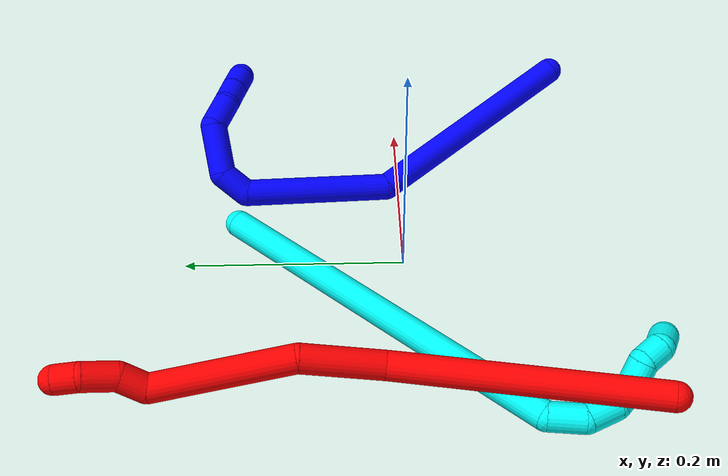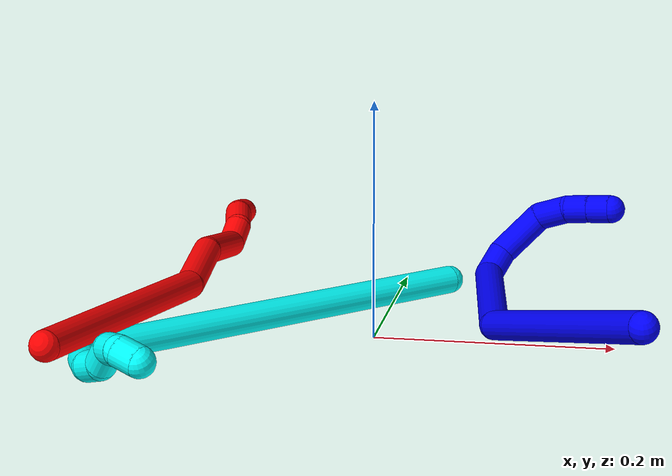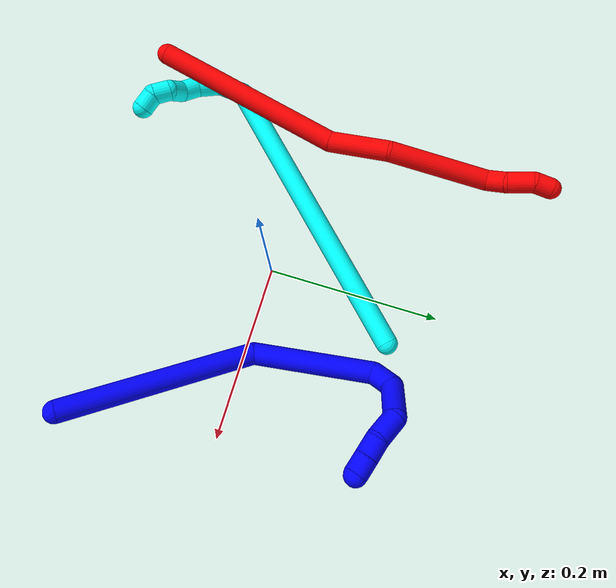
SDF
<sdf version="1.7">
 <world name="default">
  <plugin name="TubeGeneratorPlugin" filename="libtube_generator_plugin.so"/>
  <model name="photoneo_s_sensor">
   <static>1</static>
   <pose>0 0 2 1.57079 1.57079 3.14159</pose>
   <link name="link">
    <inertial><mass>0.1</mass></inertial>
    <sensor name="sensor" type="depth">
     <update_rate>30</update_rate>
     <camera>
      <horizontal_fov>1.22</horizontal_fov>
      <image><width>1920</width><height>1200</height><format>B8G8R8</format></image>
      <clip><near>0.1</near><far>4</far></clip>
      <depth_camera><output>points</output></depth_camera>
     </camera>
     <plugin name="camera_plugin" filename="libgazebo_ros_depth_camera.so">
      <baseline>0.2</baseline>
      <alwaysOn>1</alwaysOn>
      <updateRate>0.0</updateRate>
      <cameraName>camera_ir</cameraName>
      <imageTopicName>/camera/color/image_raw</imageTopicName>
      <cameraInfoTopicName>/camera/color/camera_info</cameraInfoTopicName>
      <depthImageTopicName>/camera/depth/image_raw</depthImageTopicName>
      <depthImageCameraInfoTopicName>/camera/depth/camera_info</depthImageCameraInfoTopicName>
      <pointCloudTopicName>/camera/depth/points</pointCloudTopicName>
      <frameName>fr_optical</frameName>
      <pointCloudCutoff>0.1</pointCloudCutoff>
      <pointCloudCutoffMax>2.0</pointCloudCutoffMax>
      <distortionK1>0</distortionK1>
      <distortionK2>0</distortionK2>
      <distortionK3>0</distortionK3>
      <distortionT1>0</distortionT1>
      <distortionT2>0</distortionT2>
      <CxPrime>0</CxPrime>
      <Cx>0</Cx>
      <Cy>0</Cy>
      <focalLength>0</focalLength>
      <hackBaseline>0</hackBaseline>
     </plugin>
    </sensor>
   </link>
  </model>
  <gravity>0 0 -9.8</gravity>
  <magnetic_field>6e-06 2.3e-05 -4.2e-05</magnetic_field>
  <atmosphere type="adiabatic"/>
  <physics name="default_physics" default="0" type="ode">
   <max_step_size>0.003</max_step_size>
   <real_time_factor>1</real_time_factor>
   <real_time_update_rate>1000</real_time_update_rate>
   <max_contacts>10000</max_contacts>
   <ode>
    <solver>
     <type>quick</type>
     <iters>100</iters>
     <sor>1.3</sor>
     <use_dynamic_moi_rescaling>0</use_dynamic_moi_rescaling>
    </solver>
    <constraints>
     <contact_max_correcting_vel>0</contact_max_correcting_vel>
     <contact_surface_layer>0.001</contact_surface_layer>
     <cfm>0</cfm>
     <erp>0.2</erp>
    </constraints>
   </ode>
  </physics>
  <scene><ambient>0.4 0.4 0.4 1</ambient><background>0.7 0.7 0.7 1</background><shadows>0</shadows></scene>
  <audio><device>default</device></audio>
  <spherical_coordinates>
   <surface_model>EARTH_WGS84</surface_model>
   <latitude_deg>0</latitude_deg>
   <longitude_deg>0</longitude_deg>
   <elevation>0</elevation>
   <heading_deg>0</heading_deg>
  </spherical_coordinates>
  <model name="bin">
   <static>1</static>
   <link name="bottom">
    <collision name="collision-bottom">
     <pose>0 0 -0.01 0 -0 0</pose>
     <geometry><box><size>0.8 0.6 0.02</size></box></geometry>
     <surface>
      <friction><ode><mu>100</mu><mu2>100</mu2></ode></friction>
      <contact><collide_bitmask>65535</collide_bitmask></contact>
     </surface>
    </collision>
   </link>
   <link name="west_wall">
    <collision name="collision-west_wall">
     <pose>-0.41 0 0.1 0 -0 0</pose>
     <geometry><box><size>0.02 0.6 0.2</size></box></geometry>
     <surface>
      <friction><ode><mu>100</mu><mu2>100</mu2></ode></friction>
      <contact><collide_bitmask>65535</collide_bitmask></contact>
     </surface>
    </collision>
   </link>
   <link name="east_wall">
    <collision name="collision-east_wall">
     <pose>0.41 0 0.1 0 -0 0</pose>
     <geometry><box><size>0.02 0.6 0.2</size></box></geometry>
     <surface>
      <friction><ode><mu>100</mu><mu2>100</mu2></ode></friction>
      <contact><collide_bitmask>65535</collide_bitmask></contact>
     </surface>
    </collision>
   </link>
   <link name="south_wall">
    <collision name="collision-south_wall">
     <pose>0 -0.31 0.1 0 -0 0</pose>
     <geometry><box><size>0.8 0.02 0.2</size></box></geometry>
     <surface>
      <friction><ode><mu>100</mu><mu2>100</mu2></ode></friction>
      <contact><collide_bitmask>65535</collide_bitmask></contact>
     </surface>
    </collision>
   </link>
   <link name="north_wall">
    <collision name="collision-north_wall">
     <pose>0 0.31 0.1 0 -0 0</pose>
     <geometry><box><size>0.8 0.02 0.2</size></box></geometry>
     <surface>
      <friction><ode><mu>100</mu><mu2>100</mu2></ode></friction>
      <contact><collide_bitmask>65535</collide_bitmask></contact>
     </surface>
    </collision>
   </link>
  </model>
  <model name="1">
   <static>0</static>
   <link name="1">
    <collision name="collision-cylinder-e_1_1_4">
     <pose>-0.056425 0.068538 -0.061314 -2.30062 -0.550344 1.12638</pose>
     <geometry><cylinder><radius>0.0125</radius><length>0.215784</length></cylinder></geometry>
     <surface>
      <friction><ode><mu>1.16</mu><mu2>1.16</mu2><slip1>0</slip1><slip2>0</slip2></ode></friction>
      <contact><ode><kp>1e+06</kp><kd>1</kd><max_vel>0</max_vel><min_depth>0.001</min_depth></ode></contact>
     </surface>
    </collision>
    <visual name="visual-cylinder-e_1_1_4">
     <pose>-0.056425 0.068538 -0.061314 -2.30062 -0.550344 1.12638</pose>
     <geometry><cylinder><radius>0.0125</radius><length>0.215784</length></cylinder></geometry>
     <material><ambient>0 0 1 1</ambient></material>
    </visual>
    <collision name="collision-cylinder-e_2_4_5">
     <pose>-0.115867 0.198872 -0.151185 -2.00367 -0.044277 0.069221</pose>
     <geometry><cylinder><radius>0.0125</radius><length>0.136285</length></cylinder></geometry>
     <surface>
      <friction><ode><mu>1.16</mu><mu2>1.16</mu2><slip1>0</slip1><slip2>0</slip2></ode></friction>
      <contact><ode><kp>1e+06</kp><kd>1</kd><max_vel>0</max_vel><min_depth>0.001</min_depth></ode></contact>
     </surface>
    </collision>
    <visual name="visual-cylinder-e_2_4_5">
     <pose>-0.115867 0.198872 -0.151185 -2.00367 -0.044277 0.069221</pose>
     <geometry><cylinder><radius>0.0125</radius><length>0.136285</length></cylinder></geometry>
     <material><ambient>0 0 1 1</ambient></material>
    </visual>
    <collision name="collision-cylinder-e_3_5_6">
     <pose>-0.112462 0.273424 -0.178619 -1.48296 0.464807 -0.426904</pose>
     <geometry><cylinder><radius>0.0125</radius><length>0.028648</length></cylinder></geometry>
     <surface>
      <friction><ode><mu>1.16</mu><mu2>1.16</mu2><slip1>0</slip1><slip2>0</slip2></ode></friction>
      <contact><ode><kp>1e+06</kp><kd>1</kd><max_vel>0</max_vel><min_depth>0.001</min_depth></ode></contact>
     </surface>
    </collision>
    <visual name="visual-cylinder-e_3_5_6">
     <pose>-0.112462 0.273424 -0.178619 -1.48296 0.464807 -0.426904</pose>
     <geometry><cylinder><radius>0.0125</radius><length>0.028648</length></cylinder></geometry>
     <material><ambient>0 0 1 1</ambient></material>
    </visual>
    <collision name="collision-cylinder-e_4_6_7">
     <pose>-0.087435 0.295899 -0.165801 -0.693485 0.885611 -0.339409</pose>
     <geometry><cylinder><radius>0.0125</radius><length>0.04806</length></cylinder></geometry>
     <surface>
      <friction><ode><mu>1.16</mu><mu2>1.16</mu2><slip1>0</slip1><slip2>0</slip2></ode></friction>
      <contact><ode><kp>1e+06</kp><kd>1</kd><max_vel>0</max_vel><min_depth>0.001</min_depth></ode></contact>
     </surface>
    </collision>
    <visual name="visual-cylinder-e_4_6_7">
     <pose>-0.087435 0.295899 -0.165801 -0.693485 0.885611 -0.339409</pose>
     <geometry><cylinder><radius>0.0125</radius><length>0.04806</length></cylinder></geometry>
     <material><ambient>0 0 1 1</ambient></material>
    </visual>
    <collision name="collision-cylinder-e_5_7_8">
     <pose>-0.056137 0.301263 -0.147457 0.580028 1.0112 0.327458</pose>
     <geometry><cylinder><radius>0.0125</radius><length>0.029951</length></cylinder></geometry>
     <surface>
      <friction><ode><mu>1.16</mu><mu2>1.16</mu2><slip1>0</slip1><slip2>0</slip2></ode></friction>
      <contact><ode><kp>1e+06</kp><kd>1</kd><max_vel>0</max_vel><min_depth>0.001</min_depth></ode></contact>
     </surface>
    </collision>
    <visual name="visual-cylinder-e_5_7_8">
     <pose>-0.056137 0.301263 -0.147457 0.580028 1.0112 0.327458</pose>
     <geometry><cylinder><radius>0.0125</radius><length>0.029951</length></cylinder></geometry>
     <material><ambient>0 0 1 1</ambient></material>
    </visual>
    <collision name="collision-cylinder-e_6_8_9">
     <pose>-0.033541 0.293647 -0.138893 1.03944 1.20626 0.750807</pose>
     <geometry><cylinder><radius>0.0125</radius><length>0.021203</length></cylinder></geometry>
     <surface>
      <friction><ode><mu>1.16</mu><mu2>1.16</mu2><slip1>0</slip1><slip2>0</slip2></ode></friction>
      <contact><ode><kp>1e+06</kp><kd>1</kd><max_vel>0</max_vel><min_depth>0.001</min_depth></ode></contact>
     </surface>
    </collision>
    <visual name="visual-cylinder-e_6_8_9">
     <pose>-0.033541 0.293647 -0.138893 1.03944 1.20626 0.750807</pose>
     <geometry><cylinder><radius>0.0125</radius><length>0.021203</length></cylinder></geometry>
     <material><ambient>0 0 1 1</ambient></material>
    </visual>
    <collision name="collision-cylinder-e_7_9_2">
     <pose>-0.014299 0.2871 -0.135338 1.10829 1.19585 0.797763</pose>
     <geometry><cylinder><radius>0.0125</radius><length>0.020068</length></cylinder></geometry>
     <surface>
      <friction><ode><mu>1.16</mu><mu2>1.16</mu2><slip1>0</slip1><slip2>0</slip2></ode></friction>
      <contact><ode><kp>1e+06</kp><kd>1</kd><max_vel>0</max_vel><min_depth>0.001</min_depth></ode></contact>
     </surface>
    </collision>
    <visual name="visual-cylinder-e_7_9_2">
     <pose>-0.014299 0.2871 -0.135338 1.10829 1.19585 0.797763</pose>
     <geometry><cylinder><radius>0.0125</radius><length>0.020068</length></cylinder></geometry>
     <material><ambient>0 0 1 1</ambient></material>
    </visual>
    <collision name="collision-sphere-2">
     <pose>-0.004962 0.283811 -0.133698 0 -0 0</pose>
     <geometry><sphere><radius>0.0125</radius></sphere></geometry>
     <surface>
      <friction><ode><mu>1.16</mu><mu2>1.16</mu2><slip1>0</slip1><slip2>0</slip2></ode></friction>
      <contact><ode><kp>1e+06</kp><kd>1</kd><max_vel>0</max_vel><min_depth>0.001</min_depth></ode></contact>
     </surface>
    </collision>
    <visual name="visual-sphere-2">
     <pose>-0.004962 0.283811 -0.133698 0 -0 0</pose>
     <geometry><sphere><radius>0.0125</radius></sphere></geometry>
     <material><ambient>0 0 1 1</ambient></material>
    </visual>
    <collision name="collision-sphere-9">
     <pose>-0.023636 0.290389 -0.136977 0 -0 0</pose>
     <geometry><sphere><radius>0.0125</radius></sphere></geometry>
     <surface>
      <friction><ode><mu>1.16</mu><mu2>1.16</mu2><slip1>0</slip1><slip2>0</slip2></ode></friction>
      <contact><ode><kp>1e+06</kp><kd>1</kd><max_vel>0</max_vel><min_depth>0.001</min_depth></ode></contact>
     </surface>
    </collision>
    <visual name="visual-sphere-9">
     <pose>-0.023636 0.290389 -0.136977 0 -0 0</pose>
     <geometry><sphere><radius>0.0125</radius></sphere></geometry>
     <material><ambient>0 0 1 1</ambient></material>
    </visual>
    <collision name="collision-sphere-4">
     <pose>-0.112851 0.137076 -0.122629 0 -0 0</pose>
     <geometry><sphere><radius>0.0125</radius></sphere></geometry>
     <surface>
      <friction><ode><mu>1.16</mu><mu2>1.16</mu2><slip1>0</slip1><slip2>0</slip2></ode></friction>
      <contact><ode><kp>1e+06</kp><kd>1</kd><max_vel>0</max_vel><min_depth>0.001</min_depth></ode></contact>
     </surface>
    </collision>
    <visual name="visual-sphere-4">
     <pose>-0.112851 0.137076 -0.122629 0 -0 0</pose>
     <geometry><sphere><radius>0.0125</radius></sphere></geometry>
     <material><ambient>0 0 1 1</ambient></material>
    </visual>
    <collision name="collision-sphere-1">
     <geometry><sphere><radius>0.0125</radius></sphere></geometry>
     <surface>
      <friction><ode><mu>1.16</mu><mu2>1.16</mu2><slip1>0</slip1><slip2>0</slip2></ode></friction>
      <contact><ode><kp>1e+06</kp><kd>1</kd><max_vel>0</max_vel><min_depth>0.001</min_depth></ode></contact>
     </surface>
    </collision>
    <visual name="visual-sphere-1">
     <geometry><sphere><radius>0.0125</radius></sphere></geometry>
     <material><ambient>0 0 1 1</ambient></material>
    </visual>
    <collision name="collision-sphere-8">
     <pose>-0.043446 0.296906 -0.140808 0 -0 0</pose>
     <geometry><sphere><radius>0.0125</radius></sphere></geometry>
     <surface>
      <friction><ode><mu>1.16</mu><mu2>1.16</mu2><slip1>0</slip1><slip2>0</slip2></ode></friction>
      <contact><ode><kp>1e+06</kp><kd>1</kd><max_vel>0</max_vel><min_depth>0.001</min_depth></ode></contact>
     </surface>
    </collision>
    <visual name="visual-sphere-8">
     <pose>-0.043446 0.296906 -0.140808 0 -0 0</pose>
     <geometry><sphere><radius>0.0125</radius></sphere></geometry>
     <material><ambient>0 0 1 1</ambient></material>
    </visual>
    <collision name="collision-sphere-5">
     <pose>-0.118883 0.260668 -0.179742 0 -0 0</pose>
     <geometry><sphere><radius>0.0125</radius></sphere></geometry>
     <surface>
      <friction><ode><mu>1.16</mu><mu2>1.16</mu2><slip1>0</slip1><slip2>0</slip2></ode></friction>
      <contact><ode><kp>1e+06</kp><kd>1</kd><max_vel>0</max_vel><min_depth>0.001</min_depth></ode></contact>
     </surface>
    </collision>
    <visual name="visual-sphere-5">
     <pose>-0.118883 0.260668 -0.179742 0 -0 0</pose>
     <geometry><sphere><radius>0.0125</radius></sphere></geometry>
     <material><ambient>0 0 1 1</ambient></material>
    </visual>
    <collision name="collision-sphere-6">
     <pose>-0.106042 0.286179 -0.177495 0 -0 0</pose>
     <geometry><sphere><radius>0.0125</radius></sphere></geometry>
     <surface>
      <friction><ode><mu>1.16</mu><mu2>1.16</mu2><slip1>0</slip1><slip2>0</slip2></ode></friction>
      <contact><ode><kp>1e+06</kp><kd>1</kd><max_vel>0</max_vel><min_depth>0.001</min_depth></ode></contact>
     </surface>
    </collision>
    <visual name="visual-sphere-6">
     <pose>-0.106042 0.286179 -0.177495 0 -0 0</pose>
     <geometry><sphere><radius>0.0125</radius></sphere></geometry>
     <material><ambient>0 0 1 1</ambient></material>
    </visual>
    <collision name="collision-sphere-7">
     <pose>-0.068829 0.305619 -0.154107 0 -0 0</pose>
     <geometry><sphere><radius>0.0125</radius></sphere></geometry>
     <surface>
      <friction><ode><mu>1.16</mu><mu2>1.16</mu2><slip1>0</slip1><slip2>0</slip2></ode></friction>
      <contact><ode><kp>1e+06</kp><kd>1</kd><max_vel>0</max_vel><min_depth>0.001</min_depth></ode></contact>
     </surface>
    </collision>
    <visual name="visual-sphere-7">
     <pose>-0.068829 0.305619 -0.154107 0 -0 0</pose>
     <geometry><sphere><radius>0.0125</radius></sphere></geometry>
     <material><ambient>0 0 1 1</ambient></material>
    </visual>
    <inertial>
     <pose>-0.07614 0.169915 -0.113996 0 -0 0</pose>
     <mass>0.5</mass>
     <inertia>
      <ixx>0.0012</ixx>
      <ixy>0</ixy>
      <ixz>0</ixz>
      <iyy>0.000668</iyy>
      <iyz>0</iyz>
      <izz>-0.000313</izz>
     </inertia>
    </inertial>
   </link>
   <pose>0.220694 -0.158679 0.065854 0.498602 -0.104287 0.075245</pose>
  </model>
  <model name="2">
   <static>0</static>
   <link name="2">
    <collision name="collision-cylinder-e_1_1_4">
     <pose>-0.034339 0.044522 0.099252 -0.421665 -0.30577 0.065929</pose>
     <geometry><cylinder><radius>0.0125</radius><length>0.228143</length></cylinder></geometry>
     <surface>
      <friction><ode><mu>1.16</mu><mu2>1.16</mu2><slip1>0</slip1><slip2>0</slip2></ode></friction>
      <contact><ode><kp>1e+06</kp><kd>1</kd><max_vel>0</max_vel><min_depth>0.001</min_depth></ode></contact>
     </surface>
    </collision>
    <visual name="visual-cylinder-e_1_1_4">
     <pose>-0.034339 0.044522 0.099252 -0.421665 -0.30577 0.065929</pose>
     <geometry><cylinder><radius>0.0125</radius><length>0.228143</length></cylinder></geometry>
     <material><ambient>1 0 0 1</ambient></material>
    </visual>
    <collision name="collision-cylinder-e_2_4_5">
     <pose>-0.074725 0.113029 0.224722 -0.740985 -0.168569 0.065609</pose>
     <geometry><cylinder><radius>0.0125</radius><length>0.072089</length></cylinder></geometry>
     <surface>
      <friction><ode><mu>1.16</mu><mu2>1.16</mu2><slip1>0</slip1><slip2>0</slip2></ode></friction>
      <contact><ode><kp>1e+06</kp><kd>1</kd><max_vel>0</max_vel><min_depth>0.001</min_depth></ode></contact>
     </surface>
    </collision>
    <visual name="visual-cylinder-e_2_4_5">
     <pose>-0.074725 0.113029 0.224722 -0.740985 -0.168569 0.065609</pose>
     <geometry><cylinder><radius>0.0125</radius><length>0.072089</length></cylinder></geometry>
     <material><ambient>1 0 0 1</ambient></material>
    </visual>
    <collision name="collision-cylinder-e_3_5_6">
     <pose>-0.080089 0.1622 0.307214 -0.420801 0.011083 -0.002367</pose>
     <geometry><cylinder><radius>0.0125</radius><length>0.123315</length></cylinder></geometry>
     <surface>
      <friction><ode><mu>1.16</mu><mu2>1.16</mu2><slip1>0</slip1><slip2>0</slip2></ode></friction>
      <contact><ode><kp>1e+06</kp><kd>1</kd><max_vel>0</max_vel><min_depth>0.001</min_depth></ode></contact>
     </surface>
    </collision>
    <visual name="visual-cylinder-e_3_5_6">
     <pose>-0.080089 0.1622 0.307214 -0.420801 0.011083 -0.002367</pose>
     <geometry><cylinder><radius>0.0125</radius><length>0.123315</length></cylinder></geometry>
     <material><ambient>1 0 0 1</ambient></material>
    </visual>
    <collision name="collision-cylinder-e_4_6_7">
     <pose>-0.084326 0.197555 0.369364 -1.04693 -0.396763 0.23102</pose>
     <geometry><cylinder><radius>0.0125</radius><length>0.025467</length></cylinder></geometry>
     <surface>
      <friction><ode><mu>1.16</mu><mu2>1.16</mu2><slip1>0</slip1><slip2>0</slip2></ode></friction>
      <contact><ode><kp>1e+06</kp><kd>1</kd><max_vel>0</max_vel><min_depth>0.001</min_depth></ode></contact>
     </surface>
    </collision>
    <visual name="visual-cylinder-e_4_6_7">
     <pose>-0.084326 0.197555 0.369364 -1.04693 -0.396763 0.23102</pose>
     <geometry><cylinder><radius>0.0125</radius><length>0.025467</length></cylinder></geometry>
     <material><ambient>1 0 0 1</ambient></material>
    </visual>
    <collision name="collision-cylinder-e_5_7_8">
     <pose>-0.089638 0.21915 0.385145 -0.856507 -0.025848 0.0118</pose>
     <geometry><cylinder><radius>0.0125</radius><length>0.030255</length></cylinder></geometry>
     <surface>
      <friction><ode><mu>1.16</mu><mu2>1.16</mu2><slip1>0</slip1><slip2>0</slip2></ode></friction>
      <contact><ode><kp>1e+06</kp><kd>1</kd><max_vel>0</max_vel><min_depth>0.001</min_depth></ode></contact>
     </surface>
    </collision>
    <visual name="visual-cylinder-e_5_7_8">
     <pose>-0.089638 0.21915 0.385145 -0.856507 -0.025848 0.0118</pose>
     <geometry><cylinder><radius>0.0125</radius><length>0.030255</length></cylinder></geometry>
     <material><ambient>1 0 0 1</ambient></material>
    </visual>
    <collision name="collision-cylinder-e_6_8_2">
     <pose>-0.09088 0.234685 0.404529 -0.409092 -0.082208 0.017063</pose>
     <geometry><cylinder><radius>0.0125</radius><length>0.02073</length></cylinder></geometry>
     <surface>
      <friction><ode><mu>1.16</mu><mu2>1.16</mu2><slip1>0</slip1><slip2>0</slip2></ode></friction>
      <contact><ode><kp>1e+06</kp><kd>1</kd><max_vel>0</max_vel><min_depth>0.001</min_depth></ode></contact>
     </surface>
    </collision>
    <visual name="visual-cylinder-e_6_8_2">
     <pose>-0.09088 0.234685 0.404529 -0.409092 -0.082208 0.017063</pose>
     <geometry><cylinder><radius>0.0125</radius><length>0.02073</length></cylinder></geometry>
     <material><ambient>1 0 0 1</ambient></material>
    </visual>
    <collision name="collision-sphere-2">
     <pose>-0.091731 0.238794 0.414007 0 -0 0</pose>
     <geometry><sphere><radius>0.0125</radius></sphere></geometry>
     <surface>
      <friction><ode><mu>1.16</mu><mu2>1.16</mu2><slip1>0</slip1><slip2>0</slip2></ode></friction>
      <contact><ode><kp>1e+06</kp><kd>1</kd><max_vel>0</max_vel><min_depth>0.001</min_depth></ode></contact>
     </surface>
    </collision>
    <visual name="visual-sphere-2">
     <pose>-0.091731 0.238794 0.414007 0 -0 0</pose>
     <geometry><sphere><radius>0.0125</radius></sphere></geometry>
     <material><ambient>1 0 0 1</ambient></material>
    </visual>
    <collision name="collision-sphere-4">
     <pose>-0.068677 0.089044 0.198505 0 -0 0</pose>
     <geometry><sphere><radius>0.0125</radius></sphere></geometry>
     <surface>
      <friction><ode><mu>1.16</mu><mu2>1.16</mu2><slip1>0</slip1><slip2>0</slip2></ode></friction>
      <contact><ode><kp>1e+06</kp><kd>1</kd><max_vel>0</max_vel><min_depth>0.001</min_depth></ode></contact>
     </surface>
    </collision>
    <visual name="visual-sphere-4">
     <pose>-0.068677 0.089044 0.198505 0 -0 0</pose>
     <geometry><sphere><radius>0.0125</radius></sphere></geometry>
     <material><ambient>1 0 0 1</ambient></material>
    </visual>
    <collision name="collision-sphere-1">
     <geometry><sphere><radius>0.0125</radius></sphere></geometry>
     <surface>
      <friction><ode><mu>1.16</mu><mu2>1.16</mu2><slip1>0</slip1><slip2>0</slip2></ode></friction>
      <contact><ode><kp>1e+06</kp><kd>1</kd><max_vel>0</max_vel><min_depth>0.001</min_depth></ode></contact>
     </surface>
    </collision>
    <visual name="visual-sphere-1">
     <geometry><sphere><radius>0.0125</radius></sphere></geometry>
     <material><ambient>1 0 0 1</ambient></material>
    </visual>
    <collision name="collision-sphere-8">
     <pose>-0.090029 0.230576 0.395052 0 -0 0</pose>
     <geometry><sphere><radius>0.0125</radius></sphere></geometry>
     <surface>
      <friction><ode><mu>1.16</mu><mu2>1.16</mu2><slip1>0</slip1><slip2>0</slip2></ode></friction>
      <contact><ode><kp>1e+06</kp><kd>1</kd><max_vel>0</max_vel><min_depth>0.001</min_depth></ode></contact>
     </surface>
    </collision>
    <visual name="visual-sphere-8">
     <pose>-0.090029 0.230576 0.395052 0 -0 0</pose>
     <geometry><sphere><radius>0.0125</radius></sphere></geometry>
     <material><ambient>1 0 0 1</ambient></material>
    </visual>
    <collision name="collision-sphere-5">
     <pose>-0.080772 0.137015 0.250938 0 -0 0</pose>
     <geometry><sphere><radius>0.0125</radius></sphere></geometry>
     <surface>
      <friction><ode><mu>1.16</mu><mu2>1.16</mu2><slip1>0</slip1><slip2>0</slip2></ode></friction>
      <contact><ode><kp>1e+06</kp><kd>1</kd><max_vel>0</max_vel><min_depth>0.001</min_depth></ode></contact>
     </surface>
    </collision>
    <visual name="visual-sphere-5">
     <pose>-0.080772 0.137015 0.250938 0 -0 0</pose>
     <geometry><sphere><radius>0.0125</radius></sphere></geometry>
     <material><ambient>1 0 0 1</ambient></material>
    </visual>
    <collision name="collision-sphere-6">
     <pose>-0.079405 0.187385 0.363489 0 -0 0</pose>
     <geometry><sphere><radius>0.0125</radius></sphere></geometry>
     <surface>
      <friction><ode><mu>1.16</mu><mu2>1.16</mu2><slip1>0</slip1><slip2>0</slip2></ode></friction>
      <contact><ode><kp>1e+06</kp><kd>1</kd><max_vel>0</max_vel><min_depth>0.001</min_depth></ode></contact>
     </surface>
    </collision>
    <visual name="visual-sphere-6">
     <pose>-0.079405 0.187385 0.363489 0 -0 0</pose>
     <geometry><sphere><radius>0.0125</radius></sphere></geometry>
     <material><ambient>1 0 0 1</ambient></material>
    </visual>
    <collision name="collision-sphere-7">
     <pose>-0.089247 0.207724 0.375239 0 -0 0</pose>
     <geometry><sphere><radius>0.0125</radius></sphere></geometry>
     <surface>
      <friction><ode><mu>1.16</mu><mu2>1.16</mu2><slip1>0</slip1><slip2>0</slip2></ode></friction>
      <contact><ode><kp>1e+06</kp><kd>1</kd><max_vel>0</max_vel><min_depth>0.001</min_depth></ode></contact>
     </surface>
    </collision>
    <visual name="visual-sphere-7">
     <pose>-0.089247 0.207724 0.375239 0 -0 0</pose>
     <geometry><sphere><radius>0.0125</radius></sphere></geometry>
     <material><ambient>1 0 0 1</ambient></material>
    </visual>
    <inertial>
     <pose>-0.059681 0.109668 0.212346 0 -0 0</pose>
     <mass>0.5</mass>
     <inertia>
      <ixx>0.00121</ixx>
      <ixy>0</ixy>
      <ixz>0</ixz>
      <iyy>0.001178</iyy>
      <iyz>0</iyz>
      <izz>-0.000145</izz>
     </inertia>
    </inertial>
   </link>
   <pose>-0.214197 -0.199732 0.0426 2.19469 0.446605 -2.9992</pose>
  </model>
  <model name="3">
   <static>0</static>
   <link name="3">
    <collision name="collision-cylinder-e_1_1_4">
     <pose>-0.113773 -0.114773 0.075861 0.986753 -0.690973 -0.382357</pose>
     <geometry><cylinder><radius>0.0125</radius><length>0.357054</length></cylinder></geometry>
     <surface>
      <friction><ode><mu>1.16</mu><mu2>1.16</mu2><slip1>0</slip1><slip2>0</slip2></ode></friction>
      <contact><ode><kp>1e+06</kp><kd>1</kd><max_vel>0</max_vel><min_depth>0.001</min_depth></ode></contact>
     </surface>
    </collision>
    <visual name="visual-cylinder-e_1_1_4">
     <pose>-0.113773 -0.114773 0.075861 0.986753 -0.690973 -0.382357</pose>
     <geometry><cylinder><radius>0.0125</radius><length>0.357054</length></cylinder></geometry>
     <material><ambient>0.003922 1 0.996078 1</ambient></material>
    </visual>
    <collision name="collision-cylinder-e_2_4_5">
     <pose>-0.227898 -0.243383 0.15946 1.06083 -0.022208 -0.013025</pose>
     <geometry><cylinder><radius>0.0125</radius><length>0.031717</length></cylinder></geometry>
     <surface>
      <friction><ode><mu>1.16</mu><mu2>1.16</mu2><slip1>0</slip1><slip2>0</slip2></ode></friction>
      <contact><ode><kp>1e+06</kp><kd>1</kd><max_vel>0</max_vel><min_depth>0.001</min_depth></ode></contact>
     </surface>
    </collision>
    <visual name="visual-cylinder-e_2_4_5">
     <pose>-0.227898 -0.243383 0.15946 1.06083 -0.022208 -0.013025</pose>
     <geometry><cylinder><radius>0.0125</radius><length>0.031717</length></cylinder></geometry>
     <material><ambient>0.003922 1 0.996078 1</ambient></material>
    </visual>
    <collision name="collision-cylinder-e_3_5_6">
     <pose>-0.221316 -0.26736 0.173792 0.994309 0.520633 0.287074</pose>
     <geometry><cylinder><radius>0.0125</radius><length>0.027883</length></cylinder></geometry>
     <surface>
      <friction><ode><mu>1.16</mu><mu2>1.16</mu2><slip1>0</slip1><slip2>0</slip2></ode></friction>
      <contact><ode><kp>1e+06</kp><kd>1</kd><max_vel>0</max_vel><min_depth>0.001</min_depth></ode></contact>
     </surface>
    </collision>
    <visual name="visual-cylinder-e_3_5_6">
     <pose>-0.221316 -0.26736 0.173792 0.994309 0.520633 0.287074</pose>
     <geometry><cylinder><radius>0.0125</radius><length>0.027883</length></cylinder></geometry>
     <material><ambient>0.003922 1 0.996078 1</ambient></material>
    </visual>
    <collision name="collision-cylinder-e_4_6_7">
     <pose>-0.205942 -0.281953 0.186017 0.669022 0.865791 0.318527</pose>
     <geometry><cylinder><radius>0.0125</radius><length>0.022161</length></cylinder></geometry>
     <surface>
      <friction><ode><mu>1.16</mu><mu2>1.16</mu2><slip1>0</slip1><slip2>0</slip2></ode></friction>
      <contact><ode><kp>1e+06</kp><kd>1</kd><max_vel>0</max_vel><min_depth>0.001</min_depth></ode></contact>
     </surface>
    </collision>
    <visual name="visual-cylinder-e_4_6_7">
     <pose>-0.205942 -0.281953 0.186017 0.669022 0.865791 0.318527</pose>
     <geometry><cylinder><radius>0.0125</radius><length>0.022161</length></cylinder></geometry>
     <material><ambient>0.003922 1 0.996078 1</ambient></material>
    </visual>
    <collision name="collision-cylinder-e_5_7_8">
     <pose>-0.191556 -0.286259 0.200323 -0.017069 0.600958 -0.005289</pose>
     <geometry><cylinder><radius>0.0125</radius><length>0.021034</length></cylinder></geometry>
     <surface>
      <friction><ode><mu>1.16</mu><mu2>1.16</mu2><slip1>0</slip1><slip2>0</slip2></ode></friction>
      <contact><ode><kp>1e+06</kp><kd>1</kd><max_vel>0</max_vel><min_depth>0.001</min_depth></ode></contact>
     </surface>
    </collision>
    <visual name="visual-cylinder-e_5_7_8">
     <pose>-0.191556 -0.286259 0.200323 -0.017069 0.600958 -0.005289</pose>
     <geometry><cylinder><radius>0.0125</radius><length>0.021034</length></cylinder></geometry>
     <material><ambient>0.003922 1 0.996078 1</ambient></material>
    </visual>
    <collision name="collision-cylinder-e_6_8_9">
     <pose>-0.178621 -0.291702 0.213615 0.880412 0.766867 0.375551</pose>
     <geometry><cylinder><radius>0.0125</radius><length>0.020143</length></cylinder></geometry>
     <surface>
      <friction><ode><mu>1.16</mu><mu2>1.16</mu2><slip1>0</slip1><slip2>0</slip2></ode></friction>
      <contact><ode><kp>1e+06</kp><kd>1</kd><max_vel>0</max_vel><min_depth>0.001</min_depth></ode></contact>
     </surface>
    </collision>
    <visual name="visual-cylinder-e_6_8_9">
     <pose>-0.178621 -0.291702 0.213615 0.880412 0.766867 0.375551</pose>
     <geometry><cylinder><radius>0.0125</radius><length>0.020143</length></cylinder></geometry>
     <material><ambient>0.003922 1 0.996078 1</ambient></material>
    </visual>
    <collision name="collision-cylinder-e_7_9_2">
     <pose>-0.162686 -0.301536 0.216806 1.89529 1.10689 1.42022</pose>
     <geometry><cylinder><radius>0.0125</radius><length>0.020008</length></cylinder></geometry>
     <surface>
      <friction><ode><mu>1.16</mu><mu2>1.16</mu2><slip1>0</slip1><slip2>0</slip2></ode></friction>
      <contact><ode><kp>1e+06</kp><kd>1</kd><max_vel>0</max_vel><min_depth>0.001</min_depth></ode></contact>
     </surface>
    </collision>
    <visual name="visual-cylinder-e_7_9_2">
     <pose>-0.162686 -0.301536 0.216806 1.89529 1.10689 1.42022</pose>
     <geometry><cylinder><radius>0.0125</radius><length>0.020008</length></cylinder></geometry>
     <material><ambient>0.003922 1 0.996078 1</ambient></material>
    </visual>
    <collision name="collision-sphere-2">
     <pose>-0.153739 -0.305779 0.215379 0 -0 0</pose>
     <geometry><sphere><radius>0.0125</radius></sphere></geometry>
     <surface>
      <friction><ode><mu>1.16</mu><mu2>1.16</mu2><slip1>0</slip1><slip2>0</slip2></ode></friction>
      <contact><ode><kp>1e+06</kp><kd>1</kd><max_vel>0</max_vel><min_depth>0.001</min_depth></ode></contact>
     </surface>
    </collision>
    <visual name="visual-sphere-2">
     <pose>-0.153739 -0.305779 0.215379 0 -0 0</pose>
     <geometry><sphere><radius>0.0125</radius></sphere></geometry>
     <material><ambient>0.003922 1 0.996078 1</ambient></material>
    </visual>
    <collision name="collision-sphere-9">
     <pose>-0.171633 -0.297294 0.218233 0 -0 0</pose>
     <geometry><sphere><radius>0.0125</radius></sphere></geometry>
     <surface>
      <friction><ode><mu>1.16</mu><mu2>1.16</mu2><slip1>0</slip1><slip2>0</slip2></ode></friction>
      <contact><ode><kp>1e+06</kp><kd>1</kd><max_vel>0</max_vel><min_depth>0.001</min_depth></ode></contact>
     </surface>
    </collision>
    <visual name="visual-sphere-9">
     <pose>-0.171633 -0.297294 0.218233 0 -0 0</pose>
     <geometry><sphere><radius>0.0125</radius></sphere></geometry>
     <material><ambient>0.003922 1 0.996078 1</ambient></material>
    </visual>
    <collision name="collision-sphere-4">
     <pose>-0.227546 -0.229546 0.151721 0 -0 0</pose>
     <geometry><sphere><radius>0.0125</radius></sphere></geometry>
     <surface>
      <friction><ode><mu>1.16</mu><mu2>1.16</mu2><slip1>0</slip1><slip2>0</slip2></ode></friction>
      <contact><ode><kp>1e+06</kp><kd>1</kd><max_vel>0</max_vel><min_depth>0.001</min_depth></ode></contact>
     </surface>
    </collision>
    <visual name="visual-sphere-4">
     <pose>-0.227546 -0.229546 0.151721 0 -0 0</pose>
     <geometry><sphere><radius>0.0125</radius></sphere></geometry>
     <material><ambient>0.003922 1 0.996078 1</ambient></material>
    </visual>
    <collision name="collision-sphere-1">
     <geometry><sphere><radius>0.0125</radius></sphere></geometry>
     <surface>
      <friction><ode><mu>1.16</mu><mu2>1.16</mu2><slip1>0</slip1><slip2>0</slip2></ode></friction>
      <contact><ode><kp>1e+06</kp><kd>1</kd><max_vel>0</max_vel><min_depth>0.001</min_depth></ode></contact>
     </surface>
    </collision>
    <visual name="visual-sphere-1">
     <geometry><sphere><radius>0.0125</radius></sphere></geometry>
     <material><ambient>0.003922 1 0.996078 1</ambient></material>
    </visual>
    <collision name="collision-sphere-8">
     <pose>-0.185609 -0.286111 0.208996 0 -0 0</pose>
     <geometry><sphere><radius>0.0125</radius></sphere></geometry>
     <surface>
      <friction><ode><mu>1.16</mu><mu2>1.16</mu2><slip1>0</slip1><slip2>0</slip2></ode></friction>
      <contact><ode><kp>1e+06</kp><kd>1</kd><max_vel>0</max_vel><min_depth>0.001</min_depth></ode></contact>
     </surface>
    </collision>
    <visual name="visual-sphere-8">
     <pose>-0.185609 -0.286111 0.208996 0 -0 0</pose>
     <geometry><sphere><radius>0.0125</radius></sphere></geometry>
     <material><ambient>0.003922 1 0.996078 1</ambient></material>
    </visual>
    <collision name="collision-sphere-5">
     <pose>-0.228251 -0.25722 0.1672 0 -0 0</pose>
     <geometry><sphere><radius>0.0125</radius></sphere></geometry>
     <surface>
      <friction><ode><mu>1.16</mu><mu2>1.16</mu2><slip1>0</slip1><slip2>0</slip2></ode></friction>
      <contact><ode><kp>1e+06</kp><kd>1</kd><max_vel>0</max_vel><min_depth>0.001</min_depth></ode></contact>
     </surface>
    </collision>
    <visual name="visual-sphere-5">
     <pose>-0.228251 -0.25722 0.1672 0 -0 0</pose>
     <geometry><sphere><radius>0.0125</radius></sphere></geometry>
     <material><ambient>0.003922 1 0.996078 1</ambient></material>
    </visual>
    <collision name="collision-sphere-6">
     <pose>-0.214381 -0.277499 0.180385 0 -0 0</pose>
     <geometry><sphere><radius>0.0125</radius></sphere></geometry>
     <surface>
      <friction><ode><mu>1.16</mu><mu2>1.16</mu2><slip1>0</slip1><slip2>0</slip2></ode></friction>
      <contact><ode><kp>1e+06</kp><kd>1</kd><max_vel>0</max_vel><min_depth>0.001</min_depth></ode></contact>
     </surface>
    </collision>
    <visual name="visual-sphere-6">
     <pose>-0.214381 -0.277499 0.180385 0 -0 0</pose>
     <geometry><sphere><radius>0.0125</radius></sphere></geometry>
     <material><ambient>0.003922 1 0.996078 1</ambient></material>
    </visual>
    <collision name="collision-sphere-7">
     <pose>-0.197502 -0.286407 0.19165 0 -0 0</pose>
     <geometry><sphere><radius>0.0125</radius></sphere></geometry>
     <surface>
      <friction><ode><mu>1.16</mu><mu2>1.16</mu2><slip1>0</slip1><slip2>0</slip2></ode></friction>
      <contact><ode><kp>1e+06</kp><kd>1</kd><max_vel>0</max_vel><min_depth>0.001</min_depth></ode></contact>
     </surface>
    </collision>
    <visual name="visual-sphere-7">
     <pose>-0.197502 -0.286407 0.19165 0 -0 0</pose>
     <geometry><sphere><radius>0.0125</radius></sphere></geometry>
     <material><ambient>0.003922 1 0.996078 1</ambient></material>
    </visual>
    <inertial>
     <pose>-0.138937 -0.160665 0.107933 0 -0 0</pose>
     <mass>0.5</mass>
     <inertia>
      <ixx>0.001627</ixx>
      <ixy>0</ixy>
      <ixz>0</ixz>
      <iyy>0.001596</iyy>
      <iyz>0</iyz>
      <izz>0.004893</izz>
     </inertia>
    </inertial>
   </link>
   <pose>0.045752 0.15226 0.012449 0.519361 -0.076454 -0.082882</pose>
  </model>
 </world>
</sdf>
